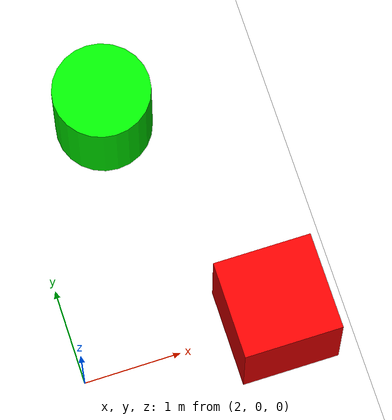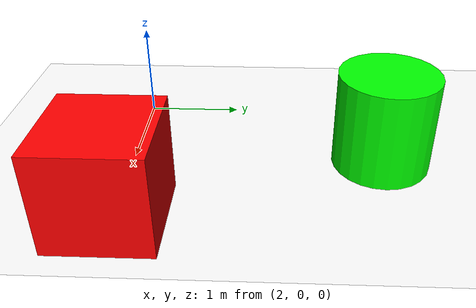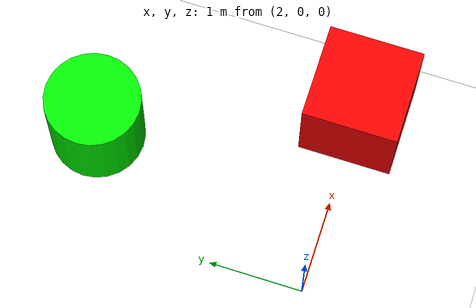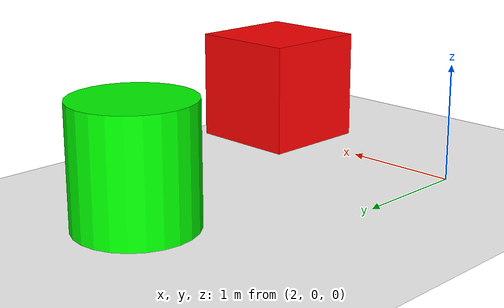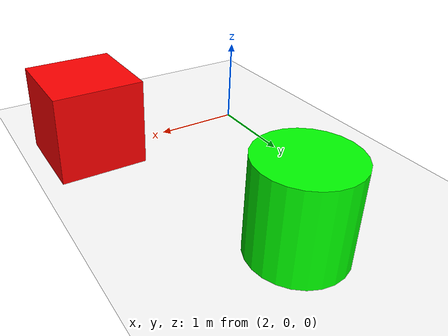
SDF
<?xml version="1.0" ?>
<sdf version="1.8">
  <world name="default">

    <plugin filename="gz-sim-physics-system" name="gz::sim::systems::Physics"/>
    <plugin filename="gz-sim-user-commands-system" name="gz::sim::systems::UserCommands"/>
    <plugin filename="gz-sim-scene-broadcaster-system" name="gz::sim::systems::SceneBroadcaster"/>
    <plugin filename="gz-sim-sensors-system" name="gz::sim::systems::Sensors">
      <render_engine>ogre2</render_engine>
    </plugin>

    <scene>
      <shadows>false</shadows>
      <ambient>0.6 0.6 0.6 1.0</ambient>
      <grid>false</grid>
    </scene>

    <light type="directional" name="sun">
      <cast_shadows>false</cast_shadows>
      <pose>0 0 10 0 0 0</pose>
      <diffuse>0.8 0.8 0.8 1</diffuse>
      <specular>0.2 0.2 0.2 1</specular>
      <direction>-0.5 0.1 -0.9</direction>
    </light>

    <include>
      <uri>https://fuel.gazebosim.org/1.0/OpenRobotics/models/Ground Plane</uri>
    </include>

    <model name="line_follower_track">
      <static>true</static>
      <pose>-0.28 -0.54 0.005 0 0 0</pose>
      <link name="link">
        <visual name="visual">
          <cast_shadows>false</cast_shadows>
          <geometry>
            <plane>
              <normal>0 0 1</normal>
              <size>10 10</size>
            </plane>
          </geometry>
          <material>
            <diffuse>1 1 1 1</diffuse>
            <specular>0 0 0 1</specular>
            <pbr>
              <metal>
                <albedo_map>/home/kovaiu/Vision_Voyager_Digital_Twin/src/vision_voyager_description/worlds/black_line.png</albedo_map>
                <roughness>0.6</roughness>
                <metalness>0</metalness>
              </metal>
            </pbr>
          </material>
        </visual>
      </link>
    </model>

    <model name="red_box">
      <pose>4.0 0 0.5 0 0 0</pose>
      <link name="link">
        <collision name="collision">
          <geometry><box><size>1 1 1</size></box></geometry>
        </collision>
        <visual name="visual">
          <geometry><box><size>1 1 1</size></box></geometry>
          <material>
            <ambient>1 0 0 1</ambient>
            <diffuse>1 0 0 1</diffuse>
            <specular>0.1 0.1 0.1 1</specular>
          </material>
        </visual>
      </link>
    </model>

    <model name="green_cylinder">
      <pose>3.0 2.56 0.5 0 0 0</pose>
      <link name="link">
        <collision name="collision">
          <geometry><cylinder><radius>0.5</radius><length>1.0</length></cylinder></geometry>
        </collision>
        <visual name="visual">
          <geometry><cylinder><radius>0.5</radius><length>1.0</length></cylinder></geometry>
          <material>
            <ambient>0 1 0 1</ambient>
            <diffuse>0 1 0 1</diffuse>
          </material>
        </visual>
      </link>
    </model>

    <physics type="ode">
      <real_time_update_rate>1000</real_time_update_rate>
      <max_step_size>0.001</max_step_size>
    </physics>

  </world>
</sdf>
